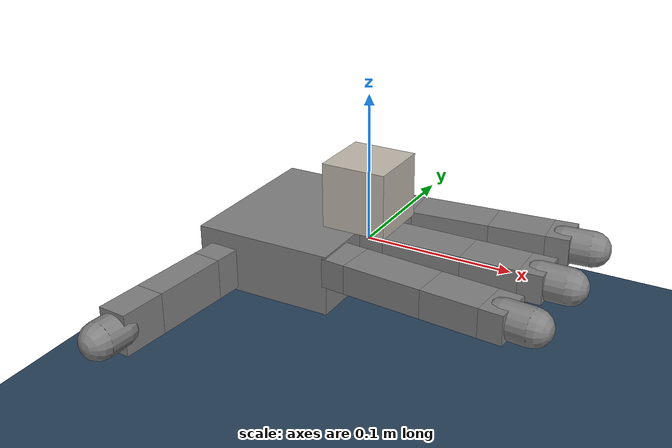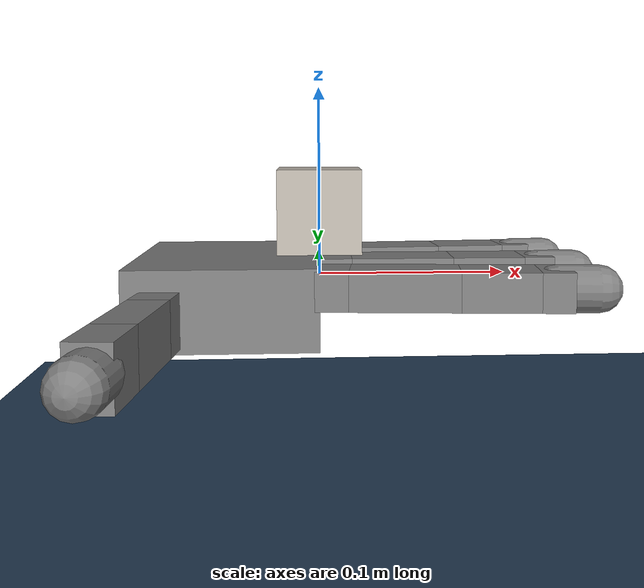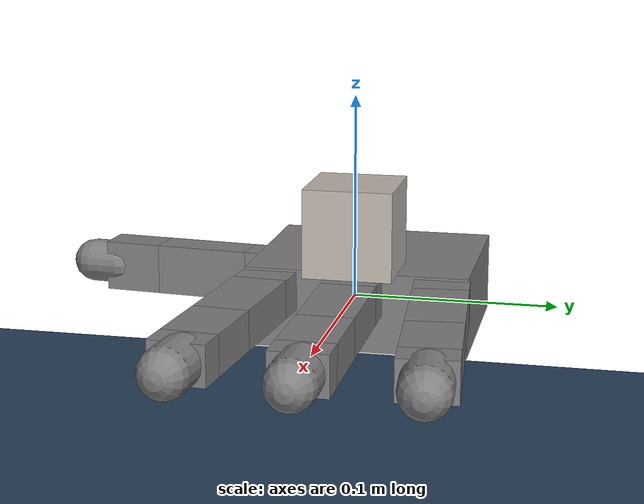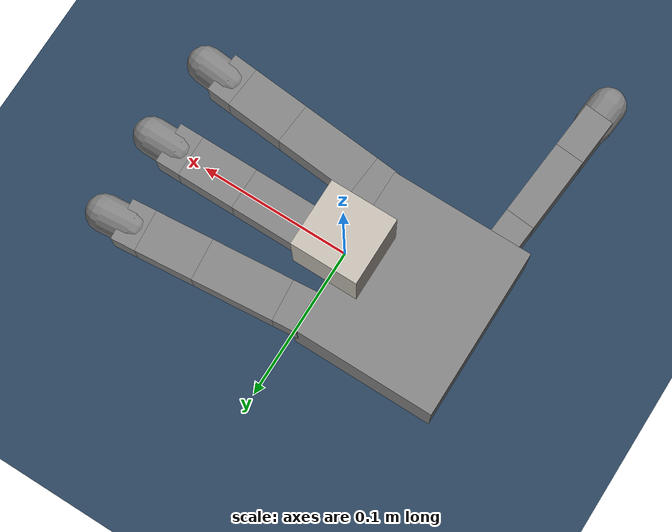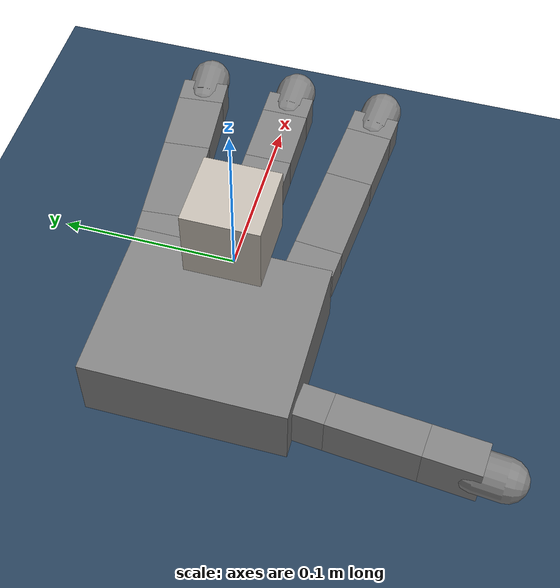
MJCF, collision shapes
<mujoco model="right_allegro_hand scene">
  <include file="right_hand.xml"/>
  <include file="cube.xml"/>

  <statistic center="0 0 0" extent="0.3"/>

  <visual>
    <rgba haze="0.15 0.25 0.35 1"/>
    <quality shadowsize="8192"/>
    <global azimuth="130" elevation="-40"/>
  </visual>

  <asset>
    <texture type="skybox" builtin="gradient" rgb1="0.3 0.5 0.7" rgb2="0 0 0" width="512" height="3072"/>
    <texture type="2d" name="groundplane" builtin="checker" mark="edge" rgb1="0.2 0.3 0.4" rgb2="0.1 0.2 0.3"
      markrgb="0.8 0.8 0.8" width="300" height="300"/>
    <material name="groundplane" texture="groundplane" texuniform="true" texrepeat="5 5" reflectance="0.2"/>
  </asset>

  <worldbody>
    <light pos="0 0 1"/>
    <light pos="0.3 0 1.5" dir="0 0 -1" directional="true"/>
    <geom name="floor" pos="0 0 -0.1" size="0 0 0.05" type="plane" material="groundplane"/>
  </worldbody>
</mujoco>

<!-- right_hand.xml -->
<mujoco model="allegro_right">
  <compiler angle="radian" meshdir="assets" autolimits="true"/>

  <option cone="pyramidal" impratio="10"/>

  <default>
    <default class="allegro_right">
      <joint axis="0 1 0" damping=".1"/>
      <position kp="1"/>
      <geom density="800"/>

      <default class="visual">
        <geom type="mesh" contype="0" conaffinity="0" group="2" material="black"/>
        <default class="palm_visual">
          <geom mesh="base_link"/>
        </default>
        <default class="base_visual">
          <geom mesh="link_0.0"/>
        </default>
        <default class="proximal_visual">
          <geom mesh="link_1.0"/>
        </default>
        <default class="medial_visual">
          <geom mesh="link_2.0"/>
        </default>
        <default class="distal_visual">
          <geom mesh="link_3.0"/>
        </default>
        <default class="fingertip_visual">
          <geom pos="0 0 0.0267" material="white" mesh="link_3.0_tip"/>
        </default>
        <default class="thumbtip_visual">
          <geom pos="0 0 0.0423" material="white" mesh="link_15.0_tip"/>
        </default>
      </default>

      <default class="collision">
        <geom group="3" type="box" mass="0"/>
        <default class="palm_collision">
          <geom size="0.0204 0.0565 0.0475" pos="-0.0093 0 -0.0475"/>
        </default>
        <default class="base_collision">
          <geom size="0.0098 0.01375 0.0082" pos="0 0 0.0082"/>
          <default class="thumb_base_collision">
            <geom size="0.0179 0.017 0.02275" pos="-0.0179 0.009 0.0145"/>
          </default>
        </default>
        <default class="proximal_collision">
          <geom size="0.0098 0.01375 0.027" pos="0 0 0.027"/>
          <default class="thumb_proximal_collision">
            <geom size="0.0098 0.01375 0.00885" pos="0 0 0.00885"/>
          </default>
        </default>
        <default class="medial_collision">
          <geom size="0.0098 0.01375 0.0192" pos="0 0 0.0192"/>
          <default class="thumb_medial_collision">
            <geom size="0.0098 0.01375 0.0257" pos="0 0 0.0257"/>
          </default>
        </default>
        <default class="distal_collision">
          <geom size="0.0098 0.01375 0.008" pos="0 0 0.008"/>
          <default class="thumb_distal_collision">
            <geom size="0.0098 0.01375 0.0157" pos="0 0 0.0157"/>
          </default>
        </default>
        <default class="fingertip_collision">
          <geom type="capsule" size="0.012 0.01" pos="0 0 0.019"/>
          <default class="thumbtip_collision">
            <geom type="capsule" size="0.012 0.008" pos="0 0 0.035"/>
          </default>
        </default>
      </default>

      <default class="base">
        <joint axis="0 0 1" range="-0.47 0.47"/>
        <position ctrlrange="-0.47 0.47"/>
      </default>
      <default class="proximal">
        <joint range="-0.196 1.61"/>
        <position ctrlrange="-0.196 1.61"/>
      </default>
      <default class="medial">
        <joint range="-0.174 1.709"/>
        <position ctrlrange="-0.174 1.709"/>
      </default>
      <default class="distal">
        <joint range="-0.227 1.618"/>
        <position ctrlrange="-0.227 1.618"/>
      </default>
      <default class="thumb_base">
        <joint axis="-1 0 0" range="0.263 1.396"/>
        <position ctrlrange="0.263 1.396"/>
      </default>
      <default class="thumb_proximal">
        <joint axis="0 0 1" range="-0.105 1.163"/>
        <position ctrlrange="-0.105 1.163"/>
      </default>
      <default class="thumb_medial">
        <joint range="-0.189 1.644"/>
        <position ctrlrange="-0.189 1.644"/>
      </default>
      <default class="thumb_distal">
        <joint range="-0.162 1.719"/>
        <position ctrlrange="-0.162 1.719"/>
      </default>
    </default>
  </default>

  <asset>
    <material name="black" rgba="0.2 0.2 0.2 1"/>
    <material name="white" rgba="0.9 0.9 0.9 1"/>

    <mesh file="base_link.stl"/>
    <mesh file="link_0.0.stl"/>
    <mesh file="link_1.0.stl"/>
    <mesh file="link_2.0.stl"/>
    <mesh file="link_3.0.stl"/>
    <mesh file="link_3.0_tip.stl"/>
    <mesh file="link_12.0_right.stl"/>
    <mesh file="link_13.0.stl"/>
    <mesh file="link_14.0.stl"/>
    <mesh file="link_15.0.stl"/>
    <mesh file="link_15.0_tip.stl"/>
  </asset>

  <worldbody>
    <body name="palm" quat="0 1 0 1" childclass="allegro_right">
      <geom class="palm_visual" mesh="base_link"/>
      <geom class="palm_collision"/>
      <!-- First finger -->
      <body name="ff_base" pos="0 0.0435 -0.001542" quat="0.999048 -0.0436194 0 0">
        <joint name="ffj0" class="base"/>
        <geom class="base_visual"/>
        <geom class="base_collision"/>
        <body name="ff_proximal" pos="0 0 0.0164">
          <joint name="ffj1" class="proximal"/>
          <geom class="proximal_visual"/>
          <geom class="proximal_collision"/>
          <body name="ff_medial" pos="0 0 0.054">
            <joint name="ffj2" class="medial"/>
            <geom class="medial_visual"/>
            <geom class="medial_collision"/>
            <body name="ff_distal" pos="0 0 0.0384">
              <joint name="ffj3" class="distal"/>
              <geom class="distal_visual"/>
              <geom class="distal_collision"/>
              <body name="ff_tip">
                <geom class="fingertip_visual"/>
                <geom class="fingertip_collision"/>
              </body>
            </body>
          </body>
        </body>
      </body>
      <!-- Middle finger -->
      <body name="mf_base" pos="0 0 0.0007">
        <joint name="mfj0" class="base"/>
        <geom class="base_visual"/>
        <geom class="base_collision"/>
        <body name="mf_proximal" pos="0 0 0.0164">
          <joint name="mfj1" class="proximal"/>
          <geom class="proximal_visual"/>
          <geom class="proximal_collision"/>
          <body name="mf_medial" pos="0 0 0.054">
            <joint name="mfj2" class="medial"/>
            <geom class="medial_visual"/>
            <geom class="medial_collision"/>
            <body name="mf_distal" pos="0 0 0.0384">
              <joint name="mfj3" class="distal"/>
              <geom class="distal_visual"/>
              <geom class="distal_collision"/>
              <body name="mf_tip">
                <geom class="fingertip_visual"/>
                <geom class="fingertip_collision"/>
              </body>
            </body>
          </body>
        </body>
      </body>
      <!-- Ring finger -->
      <body name="rf_base" pos="0 -0.0435 -0.001542" quat="0.999048 0.0436194 0 0">
        <joint name="rfj0" class="base"/>
        <geom class="base_visual"/>
        <geom class="base_collision"/>
        <body name="rf_proximal" pos="0 0 0.0164">
          <joint name="rfj1" class="proximal"/>
          <geom class="proximal_visual"/>
          <geom class="proximal_collision"/>
          <body name="rf_medial" pos="0 0 0.054">
            <joint name="rfj2" class="medial"/>
            <geom class="medial_visual"/>
            <geom class="medial_collision"/>
            <body name="rf_distal" pos="0 0 0.0384">
              <joint name="rfj3" class="distal"/>
              <geom class="distal_visual"/>
              <geom class="distal_collision"/>
              <body name="rf_tip">
                <geom class="fingertip_visual"/>
                <geom class="fingertip_collision"/>
              </body>
            </body>
          </body>
        </body>
      </body>
      <!-- Thumb -->
      <body name="th_base" pos="-0.0182 0.019333 -0.045987" quat="0.477714 -0.521334 -0.521334 -0.477714">
        <joint name="thj0" class="thumb_base"/>
        <geom class="visual" mesh="link_12.0_right"/>
        <geom class="thumb_base_collision"/>
        <body name="th_proximal" pos="-0.027 0.005 0.0399">
          <joint name="thj1" class="thumb_proximal"/>
          <geom class="visual" mesh="link_13.0"/>
          <geom class="thumb_proximal_collision"/>
          <body name="th_medial" pos="0 0 0.0177">
            <joint name="thj2" class="thumb_medial"/>
            <geom class="visual" mesh="link_14.0"/>
            <geom class="thumb_medial_collision"/>
            <body name="th_distal" pos="0 0 0.0514">
              <joint name="thj3" class="thumb_distal"/>
              <geom class="visual" mesh="link_15.0"/>
              <geom class="thumb_distal_collision"/>
              <body name="th_tip">
                <geom class="thumbtip_visual"/>
                <geom class="thumbtip_collision"/>
              </body>
            </body>
          </body>
        </body>
      </body>
    </body>
  </worldbody>

  <contact>
    <exclude body1="palm" body2="ff_base"/>
    <exclude body1="palm" body2="mf_base"/>
    <exclude body1="palm" body2="rf_base"/>
    <exclude body1="palm" body2="th_base"/>
    <exclude body1="palm" body2="th_proximal"/>
  </contact>

  <actuator>
    <motor name="ffa0" ctrllimited="true" ctrlrange="-0.7 0.7" joint="ffj0" class="base"/>
    <motor name="ffa1" ctrllimited="true" ctrlrange="-0.7 0.7" joint="ffj1" class="proximal"/>
    <motor name="ffa2" ctrllimited="true" ctrlrange="-0.7 0.7" joint="ffj2" class="medial"/>
    <motor name="ffa3" ctrllimited="true" ctrlrange="-0.7 0.7" joint="ffj3" class="distal"/>
    <motor name="mfa0" ctrllimited="true" ctrlrange="-0.7 0.7" joint="mfj0" class="base"/>
    <motor name="mfa1" ctrllimited="true" ctrlrange="-0.7 0.7" joint="mfj1" class="proximal"/>
    <motor name="mfa2" ctrllimited="true" ctrlrange="-0.7 0.7" joint="mfj2" class="medial"/>
    <motor name="mfa3" ctrllimited="true" ctrlrange="-0.7 0.7" joint="mfj3" class="distal"/>
    <motor name="rfa0" ctrllimited="true" ctrlrange="-0.7 0.7" joint="rfj0" class="base"/>
    <motor name="rfa1" ctrllimited="true" ctrlrange="-0.7 0.7" joint="rfj1" class="proximal"/>
    <motor name="rfa2" ctrllimited="true" ctrlrange="-0.7 0.7" joint="rfj2" class="medial"/>
    <motor name="rfa3" ctrllimited="true" ctrlrange="-0.7 0.7" joint="rfj3" class="distal"/>
    <motor name="tha0" ctrllimited="true" ctrlrange="-0.7 0.7" joint="thj0" class="thumb_base"/>
    <motor name="tha1" ctrllimited="true" ctrlrange="-0.7 0.7" joint="thj1" class="thumb_proximal"/>
    <motor name="tha2" ctrllimited="true" ctrlrange="-0.7 0.7" joint="thj2" class="thumb_medial"/>
    <motor name="tha3" ctrllimited="true" ctrlrange="-0.7 0.7" joint="thj3" class="thumb_distal"/>
  </actuator>
</mujoco>

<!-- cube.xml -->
<mujoco>
  <asset>
    <texture name="cube" type="cube"
             fileup="assets/fileup.png" fileback="assets/fileback.png"
             filedown="assets/filedown.png" filefront="assets/filefront.png"
             fileleft="assets/fileleft.png" fileright="assets/fileright.png"/>
    <material name="cube" texture="cube"/>
    <texture name="graycube" type="cube" fileup="assets/grayup.png"
             fileback="assets/grayback.png" filedown="assets/graydown.png"
             filefront="assets/grayfront.png" fileleft="assets/grayleft.png"
             fileright="assets/grayright.png"/>
    <material name="graycube" texture="graycube"/>
  </asset>
  <worldbody>
    <light pos="0 0 1"/>
    <body name="cube" pos="0.0 0.0 0.035" quat="1 0 0 0">
      <freejoint/>
      <geom name="cube" type="box" size=".022 .022 .022" mass=".126" material="cube"/>
    </body>
  </worldbody>

   <sensor>
        <framepos name="trace0" objtype="body" objname="cube"/>
        <framepos name="cube_position" objtype="body" objname="cube"/>
        <framequat name="cube_orientation" objtype="body" objname="cube"/>
        <framelinvel name="cube_linear_velocity" objtype="body" objname="cube"/>
        <frameangvel name="cube_angular_velocity" objtype="body" objname="cube"/>
    </sensor>
</mujoco>
